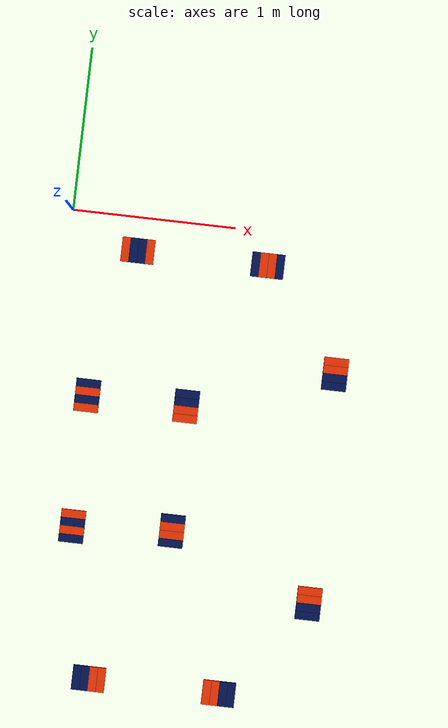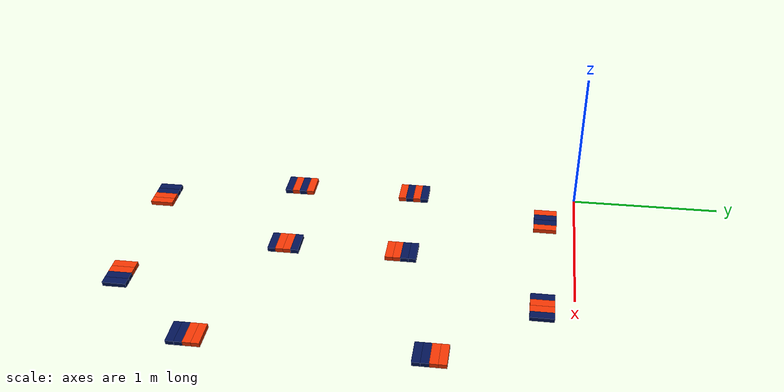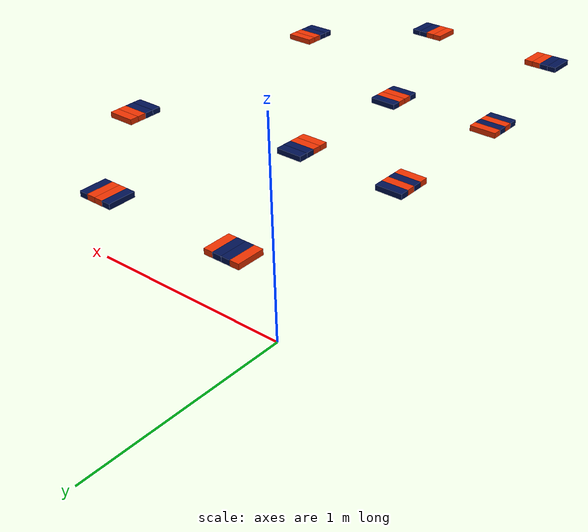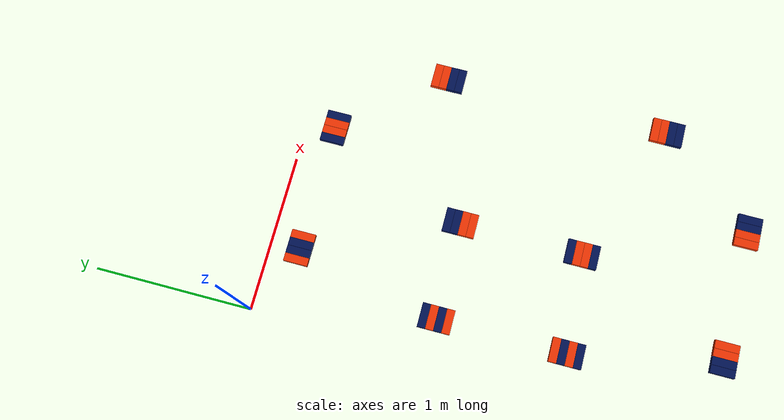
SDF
<?xml version="1.0"?>
<sdf version="1.10">
  <model name="all_cargo">
    <model name='group_1'>

      <model name='cargo_1_1'>
        <pose>1.145 -0.210 0.150 0 0 1.57</pose>
        <link name='grip_link_1_1'>
          <inertial>
            <inertia>
              <ixx>2.98e-4</ixx>
              <ixy>0</ixy>
              <ixz>0</ixz>
              <iyy>4.67e-3</iyy>
              <iyz>0</iyz>
              <izz>4.95e-3</izz>
            </inertia>
            <mass>0.35</mass>
            <pose>0 0 0 0 0 0</pose>
          </inertial>
          <collision name='box_collision_1_1'>
            <geometry>
              <box>
                <size>0.15 0.05 0.03</size>
              </box>
            </geometry>
            <surface>
              <friction>
                <ode/>
              </friction>
              <bounce/>
              <contact/>
            </surface>
          </collision>
          <visual name='box_visual_1_1'>
            <geometry>
              <box>
                <size>0.15 0.05 0.03</size>
              </box>
            </geometry>
            <material>
              <ambient> 0.0 0.068 0.325 1</ambient>
              <diffuse> 0.0 0.068 0.325 1</diffuse>
              <specular>0 0 0 1</specular>
              <emissive>0 0.05 0.0  1</emissive>
            </material>
            <gamma_correction>false</gamma_correction>
          </visual>
          <pose>0 0 0 0 0 0</pose>
          <enable_wind>false</enable_wind>
        </link>
        <static>false</static>
      </model>
      <model name='cargo_1_2'>
        <pose>1.195 -0.210 0.150 0 0 1.57</pose>
        <link name='grip_link_1_2'>
          <inertial>
            <inertia>
              <ixx>2.98e-4</ixx>
              <ixy>0</ixy>
              <ixz>0</ixz>
              <iyy>4.67e-3</iyy>
              <iyz>0</iyz>
              <izz>4.95e-3</izz>
            </inertia>
            <mass>0.35</mass>
            <pose>0 0 0 0 0 0</pose>
          </inertial>
          <collision name='box_collision_1_2'>
            <geometry>
              <box>
                <size>0.15 0.05 0.03</size>
              </box>
            </geometry>
            <surface>
              <friction>
                <ode/>
              </friction>
              <bounce/>
              <contact/>
            </surface>
          </collision>
          <visual name='box_visual_1_2'>
            <geometry>
              <box>
                <size>0.15 0.05 0.03</size>
              </box>
            </geometry>
            <material>
              <ambient> 0.93 0.2 0.007 1</ambient>
              <diffuse> 0.93 0.2 0.007 1</diffuse>
              <specular>0 0 0 1</specular>
              <emissive>0.2 0.05 0.0  1</emissive>
            </material>
            <gamma_correction>false</gamma_correction>
          </visual>
          <pose>0 0 0 0 0 0</pose>
          <enable_wind>false</enable_wind>
        </link>
        <static>false</static>
      </model>
      <model name='cargo_1_3'>
        <pose>1.245 -0.210 0.150 0 0 1.57</pose>
        <link name='grip_link_1_3'>
          <inertial>
            <inertia>
              <ixx>2.98e-4</ixx>
              <ixy>0</ixy>
              <ixz>0</ixz>
              <iyy>4.67e-3</iyy>
              <iyz>0</iyz>
              <izz>4.95e-3</izz>
            </inertia>
            <mass>0.35</mass>
            <pose>0 0 0 0 0 0</pose>
          </inertial>
          <collision name='box_collision_1_3'>
            <geometry>
              <box>
                <size>0.15 0.05 0.03</size>
              </box>
            </geometry>
            <surface>
              <friction>
                <ode/>
              </friction>
              <bounce/>
              <contact/>
            </surface>
          </collision>
          <visual name='box_visual_1_3'>
            <geometry>
              <box>
                <size>0.15 0.05 0.03</size>
              </box>
            </geometry>
            <material>
              <ambient> 0.93 0.2 0.007 1</ambient>
              <diffuse> 0.93 0.2 0.007 1</diffuse>
              <specular>0 0 0 1</specular>
              <emissive>0.2 0.05 0.0  1</emissive>
            </material>
            <gamma_correction>false</gamma_correction>
          </visual>
          <pose>0 0 0 0 0 0</pose>
          <enable_wind>false</enable_wind>
        </link>
        <static>false</static>
      </model>
      <model name='cargo_1_4'>
        <pose>1.295 -0.210 0.150 0 0 1.57</pose>
        <link name='grip_link_1_4'>
          <inertial>
            <inertia>
              <ixx>2.98e-4</ixx>
              <ixy>0</ixy>
              <ixz>0</ixz>
              <iyy>4.67e-3</iyy>
              <iyz>0</iyz>
              <izz>4.95e-3</izz>
            </inertia>
            <mass>0.35</mass>
            <pose>0 0 0 0 0 0</pose>
          </inertial>
          <collision name='box_collision_1_4'>
            <geometry>
              <box>
                <size>0.15 0.05 0.03</size>
              </box>
            </geometry>
            <surface>
              <friction>
                <ode/>
              </friction>
              <bounce/>
              <contact/>
            </surface>
          </collision>
          <visual name='box_visual_1_4'>
            <geometry>
              <box>
                <size>0.15 0.05 0.03</size>
              </box>
            </geometry>
            <material>
              <ambient> 0.0 0.068 0.325 1</ambient>
              <diffuse> 0.0 0.068 0.325 1</diffuse>
              <specular>0 0 0 1</specular>
              <emissive>0 0.05 0.0  1</emissive>
            </material>
            <gamma_correction>false</gamma_correction>
          </visual>
          <pose>0 0 0 0 0 0</pose>
          <enable_wind>false</enable_wind>
        </link>
        <static>false</static>
      </model>
    </model>    <model name='group_2'>

      <model name='cargo_2_1'>
        <pose>0.350 -0.210 0.150 0 0 1.57</pose>
        <link name='grip_link_2_1'>
          <inertial>
            <inertia>
              <ixx>2.98e-4</ixx>
              <ixy>0</ixy>
              <ixz>0</ixz>
              <iyy>4.67e-3</iyy>
              <iyz>0</iyz>
              <izz>4.95e-3</izz>
            </inertia>
            <mass>0.35</mass>
            <pose>0 0 0 0 0 0</pose>
          </inertial>
          <collision name='box_collision_2_1'>
            <geometry>
              <box>
                <size>0.15 0.05 0.03</size>
              </box>
            </geometry>
            <surface>
              <friction>
                <ode/>
              </friction>
              <bounce/>
              <contact/>
            </surface>
          </collision>
          <visual name='box_visual_2_1'>
            <geometry>
              <box>
                <size>0.15 0.05 0.03</size>
              </box>
            </geometry>
            <material>
              <ambient> 0.93 0.2 0.007 1</ambient>
              <diffuse> 0.93 0.2 0.007 1</diffuse>
              <specular>0 0 0 1</specular>
              <emissive>0.2 0.05 0.0  1</emissive>
            </material>
            <gamma_correction>false</gamma_correction>
          </visual>
          <pose>0 0 0 0 0 0</pose>
          <enable_wind>false</enable_wind>
        </link>
        <static>false</static>
      </model>
      <model name='cargo_2_2'>
        <pose>0.400 -0.210 0.150 0 0 1.57</pose>
        <link name='grip_link_2_2'>
          <inertial>
            <inertia>
              <ixx>2.98e-4</ixx>
              <ixy>0</ixy>
              <ixz>0</ixz>
              <iyy>4.67e-3</iyy>
              <iyz>0</iyz>
              <izz>4.95e-3</izz>
            </inertia>
            <mass>0.35</mass>
            <pose>0 0 0 0 0 0</pose>
          </inertial>
          <collision name='box_collision_2_2'>
            <geometry>
              <box>
                <size>0.15 0.05 0.03</size>
              </box>
            </geometry>
            <surface>
              <friction>
                <ode/>
              </friction>
              <bounce/>
              <contact/>
            </surface>
          </collision>
          <visual name='box_visual_2_2'>
            <geometry>
              <box>
                <size>0.15 0.05 0.03</size>
              </box>
            </geometry>
            <material>
              <ambient> 0.0 0.068 0.325 1</ambient>
              <diffuse> 0.0 0.068 0.325 1</diffuse>
              <specular>0 0 0 1</specular>
              <emissive>0 0.05 0.0  1</emissive>
            </material>
            <gamma_correction>false</gamma_correction>
          </visual>
          <pose>0 0 0 0 0 0</pose>
          <enable_wind>false</enable_wind>
        </link>
        <static>false</static>
      </model>
      <model name='cargo_2_3'>
        <pose>0.450 -0.210 0.150 0 0 1.57</pose>
        <link name='grip_link_2_3'>
          <inertial>
            <inertia>
              <ixx>2.98e-4</ixx>
              <ixy>0</ixy>
              <ixz>0</ixz>
              <iyy>4.67e-3</iyy>
              <iyz>0</iyz>
              <izz>4.95e-3</izz>
            </inertia>
            <mass>0.35</mass>
            <pose>0 0 0 0 0 0</pose>
          </inertial>
          <collision name='box_collision_2_3'>
            <geometry>
              <box>
                <size>0.15 0.05 0.03</size>
              </box>
            </geometry>
            <surface>
              <friction>
                <ode/>
              </friction>
              <bounce/>
              <contact/>
            </surface>
          </collision>
          <visual name='box_visual_2_3'>
            <geometry>
              <box>
                <size>0.15 0.05 0.03</size>
              </box>
            </geometry>
            <material>
              <ambient> 0.0 0.068 0.325 1</ambient>
              <diffuse> 0.0 0.068 0.325 1</diffuse>
              <specular>0 0 0 1</specular>
              <emissive>0 0.05 0.0  1</emissive>
            </material>
            <gamma_correction>false</gamma_correction>
          </visual>
          <pose>0 0 0 0 0 0</pose>
          <enable_wind>false</enable_wind>
        </link>
        <static>false</static>
      </model>
      <model name='cargo_2_4'>
        <pose>0.500 -0.210 0.150 0 0 1.57</pose>
        <link name='grip_link_2_4'>
          <inertial>
            <inertia>
              <ixx>2.98e-4</ixx>
              <ixy>0</ixy>
              <ixz>0</ixz>
              <iyy>4.67e-3</iyy>
              <iyz>0</iyz>
              <izz>4.95e-3</izz>
            </inertia>
            <mass>0.35</mass>
            <pose>0 0 0 0 0 0</pose>
          </inertial>
          <collision name='box_collision_2_4'>
            <geometry>
              <box>
                <size>0.15 0.05 0.03</size>
              </box>
            </geometry>
            <surface>
              <friction>
                <ode/>
              </friction>
              <bounce/>
              <contact/>
            </surface>
          </collision>
          <visual name='box_visual_2_4'>
            <geometry>
              <box>
                <size>0.15 0.05 0.03</size>
              </box>
            </geometry>
            <material>
              <ambient> 0.93 0.2 0.007 1</ambient>
              <diffuse> 0.93 0.2 0.007 1</diffuse>
              <specular>0 0 0 1</specular>
              <emissive>0.2 0.05 0.0  1</emissive>
            </material>
            <gamma_correction>false</gamma_correction>
          </visual>
          <pose>0 0 0 0 0 0</pose>
          <enable_wind>false</enable_wind>
        </link>
        <static>false</static>
      </model>
    </model>    <model name='group_3'>

      <model name='cargo_3_1'>
        <pose>0.220 -1.195 0.150 0 0 0</pose>
        <link name='grip_link_3_1'>
          <inertial>
            <inertia>
              <ixx>2.98e-4</ixx>
              <ixy>0</ixy>
              <ixz>0</ixz>
              <iyy>4.67e-3</iyy>
              <iyz>0</iyz>
              <izz>4.95e-3</izz>
            </inertia>
            <mass>0.35</mass>
            <pose>0 0 0 0 0 0</pose>
          </inertial>
          <collision name='box_collision_3_1'>
            <geometry>
              <box>
                <size>0.15 0.05 0.03</size>
              </box>
            </geometry>
            <surface>
              <friction>
                <ode/>
              </friction>
              <bounce/>
              <contact/>
            </surface>
          </collision>
          <visual name='box_visual_3_1'>
            <geometry>
              <box>
                <size>0.15 0.05 0.03</size>
              </box>
            </geometry>
            <material>
              <ambient> 0.93 0.2 0.007 1</ambient>
              <diffuse> 0.93 0.2 0.007 1</diffuse>
              <specular>0 0 0 1</specular>
              <emissive>0.2 0.05 0.0  1</emissive>
            </material>
            <gamma_correction>false</gamma_correction>
          </visual>
          <pose>0 0 0 0 0 0</pose>
          <enable_wind>false</enable_wind>
        </link>
        <static>false</static>
      </model>
      <model name='cargo_3_2'>
        <pose>0.220 -1.145 0.150 0 0 0</pose>
        <link name='grip_link_3_2'>
          <inertial>
            <inertia>
              <ixx>2.98e-4</ixx>
              <ixy>0</ixy>
              <ixz>0</ixz>
              <iyy>4.67e-3</iyy>
              <iyz>0</iyz>
              <izz>4.95e-3</izz>
            </inertia>
            <mass>0.35</mass>
            <pose>0 0 0 0 0 0</pose>
          </inertial>
          <collision name='box_collision_3_2'>
            <geometry>
              <box>
                <size>0.15 0.05 0.03</size>
              </box>
            </geometry>
            <surface>
              <friction>
                <ode/>
              </friction>
              <bounce/>
              <contact/>
            </surface>
          </collision>
          <visual name='box_visual_3_2'>
            <geometry>
              <box>
                <size>0.15 0.05 0.03</size>
              </box>
            </geometry>
            <material>
              <ambient> 0.0 0.068 0.325 1</ambient>
              <diffuse> 0.0 0.068 0.325 1</diffuse>
              <specular>0 0 0 1</specular>
              <emissive>0 0.05 0.0  1</emissive>
            </material>
            <gamma_correction>false</gamma_correction>
          </visual>
          <pose>0 0 0 0 0 0</pose>
          <enable_wind>false</enable_wind>
        </link>
        <static>false</static>
      </model>
      <model name='cargo_3_3'>
        <pose>0.220 -1.095 0.150 0 0 0</pose>
        <link name='grip_link_3_3'>
          <inertial>
            <inertia>
              <ixx>2.98e-4</ixx>
              <ixy>0</ixy>
              <ixz>0</ixz>
              <iyy>4.67e-3</iyy>
              <iyz>0</iyz>
              <izz>4.95e-3</izz>
            </inertia>
            <mass>0.35</mass>
            <pose>0 0 0 0 0 0</pose>
          </inertial>
          <collision name='box_collision_3_3'>
            <geometry>
              <box>
                <size>0.15 0.05 0.03</size>
              </box>
            </geometry>
            <surface>
              <friction>
                <ode/>
              </friction>
              <bounce/>
              <contact/>
            </surface>
          </collision>
          <visual name='box_visual_3_3'>
            <geometry>
              <box>
                <size>0.15 0.05 0.03</size>
              </box>
            </geometry>
            <material>
              <ambient> 0.93 0.2 0.007 1</ambient>
              <diffuse> 0.93 0.2 0.007 1</diffuse>
              <specular>0 0 0 1</specular>
              <emissive>0.2 0.05 0.0  1</emissive>
            </material>
            <gamma_correction>false</gamma_correction>
          </visual>
          <pose>0 0 0 0 0 0</pose>
          <enable_wind>false</enable_wind>
        </link>
        <static>false</static>
      </model>
      <model name='cargo_3_4'>
        <pose>0.220 -1.045 0.150 0 0 0</pose>
        <link name='grip_link_3_4'>
          <inertial>
            <inertia>
              <ixx>2.98e-4</ixx>
              <ixy>0</ixy>
              <ixz>0</ixz>
              <iyy>4.67e-3</iyy>
              <iyz>0</iyz>
              <izz>4.95e-3</izz>
            </inertia>
            <mass>0.35</mass>
            <pose>0 0 0 0 0 0</pose>
          </inertial>
          <collision name='box_collision_3_4'>
            <geometry>
              <box>
                <size>0.15 0.05 0.03</size>
              </box>
            </geometry>
            <surface>
              <friction>
                <ode/>
              </friction>
              <bounce/>
              <contact/>
            </surface>
          </collision>
          <visual name='box_visual_3_4'>
            <geometry>
              <box>
                <size>0.15 0.05 0.03</size>
              </box>
            </geometry>
            <material>
              <ambient> 0.0 0.068 0.325 1</ambient>
              <diffuse> 0.0 0.068 0.325 1</diffuse>
              <specular>0 0 0 1</specular>
              <emissive>0 0.05 0.0  1</emissive>
            </material>
            <gamma_correction>false</gamma_correction>
          </visual>
          <pose>0 0 0 0 0 0</pose>
          <enable_wind>false</enable_wind>
        </link>
        <static>false</static>
      </model>
    </model>    <model name='group_4'>

      <model name='cargo_4_1'>
        <pose>0.825 -1.192 0.150 0 0 0</pose>
        <link name='grip_link_4_1'>
          <inertial>
            <inertia>
              <ixx>2.98e-4</ixx>
              <ixy>0</ixy>
              <ixz>0</ixz>
              <iyy>4.67e-3</iyy>
              <iyz>0</iyz>
              <izz>4.95e-3</izz>
            </inertia>
            <mass>0.35</mass>
            <pose>0 0 0 0 0 0</pose>
          </inertial>
          <collision name='box_collision_4_1'>
            <geometry>
              <box>
                <size>0.15 0.05 0.03</size>
              </box>
            </geometry>
            <surface>
              <friction>
                <ode/>
              </friction>
              <bounce/>
              <contact/>
            </surface>
          </collision>
          <visual name='box_visual_4_1'>
            <geometry>
              <box>
                <size>0.15 0.05 0.03</size>
              </box>
            </geometry>
            <material>
              <ambient> 0.93 0.2 0.007 1</ambient>
              <diffuse> 0.93 0.2 0.007 1</diffuse>
              <specular>0 0 0 1</specular>
              <emissive>0.2 0.05 0.0  1</emissive>
            </material>
            <gamma_correction>false</gamma_correction>
          </visual>
          <pose>0 0 0 0 0 0</pose>
          <enable_wind>false</enable_wind>
        </link>
        <static>false</static>
      </model>
      <model name='cargo_4_2'>
        <pose>0.825 -1.142 0.150 0 0 0</pose>
        <link name='grip_link_4_2'>
          <inertial>
            <inertia>
              <ixx>2.98e-4</ixx>
              <ixy>0</ixy>
              <ixz>0</ixz>
              <iyy>4.67e-3</iyy>
              <iyz>0</iyz>
              <izz>4.95e-3</izz>
            </inertia>
            <mass>0.35</mass>
            <pose>0 0 0 0 0 0</pose>
          </inertial>
          <collision name='box_collision_4_2'>
            <geometry>
              <box>
                <size>0.15 0.05 0.03</size>
              </box>
            </geometry>
            <surface>
              <friction>
                <ode/>
              </friction>
              <bounce/>
              <contact/>
            </surface>
          </collision>
          <visual name='box_visual_4_2'>
            <geometry>
              <box>
                <size>0.15 0.05 0.03</size>
              </box>
            </geometry>
            <material>
              <ambient> 0.93 0.2 0.007 1</ambient>
              <diffuse> 0.93 0.2 0.007 1</diffuse>
              <specular>0 0 0 1</specular>
              <emissive>0.2 0.05 0.0  1</emissive>
            </material>
            <gamma_correction>false</gamma_correction>
          </visual>
          <pose>0 0 0 0 0 0</pose>
          <enable_wind>false</enable_wind>
        </link>
        <static>false</static>
      </model>
      <model name='cargo_4_3'>
        <pose>0.825 -1.092 0.150 0 0 0</pose>
        <link name='grip_link_4_3'>
          <inertial>
            <inertia>
              <ixx>2.98e-4</ixx>
              <ixy>0</ixy>
              <ixz>0</ixz>
              <iyy>4.67e-3</iyy>
              <iyz>0</iyz>
              <izz>4.95e-3</izz>
            </inertia>
            <mass>0.35</mass>
            <pose>0 0 0 0 0 0</pose>
          </inertial>
          <collision name='box_collision_4_3'>
            <geometry>
              <box>
                <size>0.15 0.05 0.03</size>
              </box>
            </geometry>
            <surface>
              <friction>
                <ode/>
              </friction>
              <bounce/>
              <contact/>
            </surface>
          </collision>
          <visual name='box_visual_4_3'>
            <geometry>
              <box>
                <size>0.15 0.05 0.03</size>
              </box>
            </geometry>
            <material>
              <ambient> 0.0 0.068 0.325 1</ambient>
              <diffuse> 0.0 0.068 0.325 1</diffuse>
              <specular>0 0 0 1</specular>
              <emissive>0 0.05 0.0  1</emissive>
            </material>
            <gamma_correction>false</gamma_correction>
          </visual>
          <pose>0 0 0 0 0 0</pose>
          <enable_wind>false</enable_wind>
        </link>
        <static>false</static>
      </model>
      <model name='cargo_4_4'>
        <pose>0.825 -1.042 0.150 0 0 0</pose>
        <link name='grip_link_4_4'>
          <inertial>
            <inertia>
              <ixx>2.98e-4</ixx>
              <ixy>0</ixy>
              <ixz>0</ixz>
              <iyy>4.67e-3</iyy>
              <iyz>0</iyz>
              <izz>4.95e-3</izz>
            </inertia>
            <mass>0.35</mass>
            <pose>0 0 0 0 0 0</pose>
          </inertial>
          <collision name='box_collision_4_4'>
            <geometry>
              <box>
                <size>0.15 0.05 0.03</size>
              </box>
            </geometry>
            <surface>
              <friction>
                <ode/>
              </friction>
              <bounce/>
              <contact/>
            </surface>
          </collision>
          <visual name='box_visual_4_4'>
            <geometry>
              <box>
                <size>0.15 0.05 0.03</size>
              </box>
            </geometry>
            <material>
              <ambient> 0.0 0.068 0.325 1</ambient>
              <diffuse> 0.0 0.068 0.325 1</diffuse>
              <specular>0 0 0 1</specular>
              <emissive>0 0.05 0.0  1</emissive>
            </material>
            <gamma_correction>false</gamma_correction>
          </visual>
          <pose>0 0 0 0 0 0</pose>
          <enable_wind>false</enable_wind>
        </link>
        <static>false</static>
      </model>
    </model>    <model name='group_5'>

      <model name='cargo_5_1'>
        <pose>1.700 -0.895 0.200 0 0 0</pose>
        <link name='grip_link_5_1'>
          <inertial>
            <inertia>
              <ixx>2.98e-4</ixx>
              <ixy>0</ixy>
              <ixz>0</ixz>
              <iyy>4.67e-3</iyy>
              <iyz>0</iyz>
              <izz>4.95e-3</izz>
            </inertia>
            <mass>0.35</mass>
            <pose>0 0 0 0 0 0</pose>
          </inertial>
          <collision name='box_collision_5_1'>
            <geometry>
              <box>
                <size>0.15 0.05 0.03</size>
              </box>
            </geometry>
            <surface>
              <friction>
                <ode/>
              </friction>
              <bounce/>
              <contact/>
            </surface>
          </collision>
          <visual name='box_visual_5_1'>
            <geometry>
              <box>
                <size>0.15 0.05 0.03</size>
              </box>
            </geometry>
            <material>
              <ambient> 0.0 0.068 0.325 1</ambient>
              <diffuse> 0.0 0.068 0.325 1</diffuse>
              <specular>0 0 0 1</specular>
              <emissive>0 0.05 0.0  1</emissive>
            </material>
            <gamma_correction>false</gamma_correction>
          </visual>
          <pose>0 0 0 0 0 0</pose>
          <enable_wind>false</enable_wind>
        </link>
        <static>false</static>
      </model>
      <model name='cargo_5_2'>
        <pose>1.700 -0.845 0.200 0 0 0</pose>
        <link name='grip_link_5_2'>
          <inertial>
            <inertia>
              <ixx>2.98e-4</ixx>
              <ixy>0</ixy>
              <ixz>0</ixz>
              <iyy>4.67e-3</iyy>
              <iyz>0</iyz>
              <izz>4.95e-3</izz>
            </inertia>
            <mass>0.35</mass>
            <pose>0 0 0 0 0 0</pose>
          </inertial>
          <collision name='box_collision_5_2'>
            <geometry>
              <box>
                <size>0.15 0.05 0.03</size>
              </box>
            </geometry>
            <surface>
              <friction>
                <ode/>
              </friction>
              <bounce/>
              <contact/>
            </surface>
          </collision>
          <visual name='box_visual_5_2'>
            <geometry>
              <box>
                <size>0.15 0.05 0.03</size>
              </box>
            </geometry>
            <material>
              <ambient> 0.0 0.068 0.325 1</ambient>
              <diffuse> 0.0 0.068 0.325 1</diffuse>
              <specular>0 0 0 1</specular>
              <emissive>0 0.05 0.0  1</emissive>
            </material>
            <gamma_correction>false</gamma_correction>
          </visual>
          <pose>0 0 0 0 0 0</pose>
          <enable_wind>false</enable_wind>
        </link>
        <static>false</static>
      </model>
      <model name='cargo_5_3'>
        <pose>1.700 -0.795 0.200 0 0 0</pose>
        <link name='grip_link_5_3'>
          <inertial>
            <inertia>
              <ixx>2.98e-4</ixx>
              <ixy>0</ixy>
              <ixz>0</ixz>
              <iyy>4.67e-3</iyy>
              <iyz>0</iyz>
              <izz>4.95e-3</izz>
            </inertia>
            <mass>0.35</mass>
            <pose>0 0 0 0 0 0</pose>
          </inertial>
          <collision name='box_collision_5_3'>
            <geometry>
              <box>
                <size>0.15 0.05 0.03</size>
              </box>
            </geometry>
            <surface>
              <friction>
                <ode/>
              </friction>
              <bounce/>
              <contact/>
            </surface>
          </collision>
          <visual name='box_visual_5_3'>
            <geometry>
              <box>
                <size>0.15 0.05 0.03</size>
              </box>
            </geometry>
            <material>
              <ambient> 0.93 0.2 0.007 1</ambient>
              <diffuse> 0.93 0.2 0.007 1</diffuse>
              <specular>0 0 0 1</specular>
              <emissive>0.2 0.05 0.0  1</emissive>
            </material>
            <gamma_correction>false</gamma_correction>
          </visual>
          <pose>0 0 0 0 0 0</pose>
          <enable_wind>false</enable_wind>
        </link>
        <static>false</static>
      </model>
      <model name='cargo_5_4'>
        <pose>1.700 -0.745 0.200 0 0 0</pose>
        <link name='grip_link_5_4'>
          <inertial>
            <inertia>
              <ixx>2.98e-4</ixx>
              <ixy>0</ixy>
              <ixz>0</ixz>
              <iyy>4.67e-3</iyy>
              <iyz>0</iyz>
              <izz>4.95e-3</izz>
            </inertia>
            <mass>0.35</mass>
            <pose>0 0 0 0 0 0</pose>
          </inertial>
          <collision name='box_collision_5_4'>
            <geometry>
              <box>
                <size>0.15 0.05 0.03</size>
              </box>
            </geometry>
            <surface>
              <friction>
                <ode/>
              </friction>
              <bounce/>
              <contact/>
            </surface>
          </collision>
          <visual name='box_visual_5_4'>
            <geometry>
              <box>
                <size>0.15 0.05 0.03</size>
              </box>
            </geometry>
            <material>
              <ambient> 0.93 0.2 0.007 1</ambient>
              <diffuse> 0.93 0.2 0.007 1</diffuse>
              <specular>0 0 0 1</specular>
              <emissive>0.2 0.05 0.0  1</emissive>
            </material>
            <gamma_correction>false</gamma_correction>
          </visual>
          <pose>0 0 0 0 0 0</pose>
          <enable_wind>false</enable_wind>
        </link>
        <static>false</static>
      </model>
    </model>    <model name='group_6'>

      <model name='cargo_6_1'>
        <pose>1.145 -2.830 0.150 0 0 1.57</pose>
        <link name='grip_link_6_1'>
          <inertial>
            <inertia>
              <ixx>2.98e-4</ixx>
              <ixy>0</ixy>
              <ixz>0</ixz>
              <iyy>4.67e-3</iyy>
              <iyz>0</iyz>
              <izz>4.95e-3</izz>
            </inertia>
            <mass>0.35</mass>
            <pose>0 0 0 0 0 0</pose>
          </inertial>
          <collision name='box_collision_6_1'>
            <geometry>
              <box>
                <size>0.15 0.05 0.03</size>
              </box>
            </geometry>
            <surface>
              <friction>
                <ode/>
              </friction>
              <bounce/>
              <contact/>
            </surface>
          </collision>
          <visual name='box_visual_6_1'>
            <geometry>
              <box>
                <size>0.15 0.05 0.03</size>
              </box>
            </geometry>
            <material>
              <ambient> 0.93 0.2 0.007 1</ambient>
              <diffuse> 0.93 0.2 0.007 1</diffuse>
              <specular>0 0 0 1</specular>
              <emissive>0.2 0.05 0.0  1</emissive>
            </material>
            <gamma_correction>false</gamma_correction>
          </visual>
          <pose>0 0 0 0 0 0</pose>
          <enable_wind>false</enable_wind>
        </link>
        <static>false</static>
      </model>
      <model name='cargo_6_2'>
        <pose>1.195 -2.830 0.150 0 0 1.57</pose>
        <link name='grip_link_6_2'>
          <inertial>
            <inertia>
              <ixx>2.98e-4</ixx>
              <ixy>0</ixy>
              <ixz>0</ixz>
              <iyy>4.67e-3</iyy>
              <iyz>0</iyz>
              <izz>4.95e-3</izz>
            </inertia>
            <mass>0.35</mass>
            <pose>0 0 0 0 0 0</pose>
          </inertial>
          <collision name='box_collision_6_2'>
            <geometry>
              <box>
                <size>0.15 0.05 0.03</size>
              </box>
            </geometry>
            <surface>
              <friction>
                <ode/>
              </friction>
              <bounce/>
              <contact/>
            </surface>
          </collision>
          <visual name='box_visual_6_2'>
            <geometry>
              <box>
                <size>0.15 0.05 0.03</size>
              </box>
            </geometry>
            <material>
              <ambient> 0.93 0.2 0.007 1</ambient>
              <diffuse> 0.93 0.2 0.007 1</diffuse>
              <specular>0 0 0 1</specular>
              <emissive>0.2 0.05 0.0  1</emissive>
            </material>
            <gamma_correction>false</gamma_correction>
          </visual>
          <pose>0 0 0 0 0 0</pose>
          <enable_wind>false</enable_wind>
        </link>
        <static>false</static>
      </model>
      <model name='cargo_6_3'>
        <pose>1.245 -2.830 0.150 0 0 1.57</pose>
        <link name='grip_link_6_3'>
          <inertial>
            <inertia>
              <ixx>2.98e-4</ixx>
              <ixy>0</ixy>
              <ixz>0</ixz>
              <iyy>4.67e-3</iyy>
              <iyz>0</iyz>
              <izz>4.95e-3</izz>
            </inertia>
            <mass>0.35</mass>
            <pose>0 0 0 0 0 0</pose>
          </inertial>
          <collision name='box_collision_6_3'>
            <geometry>
              <box>
                <size>0.15 0.05 0.03</size>
              </box>
            </geometry>
            <surface>
              <friction>
                <ode/>
              </friction>
              <bounce/>
              <contact/>
            </surface>
          </collision>
          <visual name='box_visual_6_3'>
            <geometry>
              <box>
                <size>0.15 0.05 0.03</size>
              </box>
            </geometry>
            <material>
              <ambient> 0.0 0.068 0.325 1</ambient>
              <diffuse> 0.0 0.068 0.325 1</diffuse>
              <specular>0 0 0 1</specular>
              <emissive>0 0.05 0.0  1</emissive>
            </material>
            <gamma_correction>false</gamma_correction>
          </visual>
          <pose>0 0 0 0 0 0</pose>
          <enable_wind>false</enable_wind>
        </link>
        <static>false</static>
      </model>
      <model name='cargo_6_4'>
        <pose>1.295 -2.830 0.150 0 0 1.57</pose>
        <link name='grip_link_6_4'>
          <inertial>
            <inertia>
              <ixx>2.98e-4</ixx>
              <ixy>0</ixy>
              <ixz>0</ixz>
              <iyy>4.67e-3</iyy>
              <iyz>0</iyz>
              <izz>4.95e-3</izz>
            </inertia>
            <mass>0.35</mass>
            <pose>0 0 0 0 0 0</pose>
          </inertial>
          <collision name='box_collision_6_4'>
            <geometry>
              <box>
                <size>0.15 0.05 0.03</size>
              </box>
            </geometry>
            <surface>
              <friction>
                <ode/>
              </friction>
              <bounce/>
              <contact/>
            </surface>
          </collision>
          <visual name='box_visual_6_4'>
            <geometry>
              <box>
                <size>0.15 0.05 0.03</size>
              </box>
            </geometry>
            <material>
              <ambient> 0.0 0.068 0.325 1</ambient>
              <diffuse> 0.0 0.068 0.325 1</diffuse>
              <specular>0 0 0 1</specular>
              <emissive>0 0.05 0.0  1</emissive>
            </material>
            <gamma_correction>false</gamma_correction>
          </visual>
          <pose>0 0 0 0 0 0</pose>
          <enable_wind>false</enable_wind>
        </link>
        <static>false</static>
      </model>
    </model>    <model name='group_7'>

      <model name='cargo_7_1'>
        <pose>0.350 -2.830 0.150 0 0 1.57</pose>
        <link name='grip_link_7_1'>
          <inertial>
            <inertia>
              <ixx>2.98e-4</ixx>
              <ixy>0</ixy>
              <ixz>0</ixz>
              <iyy>4.67e-3</iyy>
              <iyz>0</iyz>
              <izz>4.95e-3</izz>
            </inertia>
            <mass>0.35</mass>
            <pose>0 0 0 0 0 0</pose>
          </inertial>
          <collision name='box_collision_7_1'>
            <geometry>
              <box>
                <size>0.15 0.05 0.03</size>
              </box>
            </geometry>
            <surface>
              <friction>
                <ode/>
              </friction>
              <bounce/>
              <contact/>
            </surface>
          </collision>
          <visual name='box_visual_7_1'>
            <geometry>
              <box>
                <size>0.15 0.05 0.03</size>
              </box>
            </geometry>
            <material>
              <ambient> 0.0 0.068 0.325 1</ambient>
              <diffuse> 0.0 0.068 0.325 1</diffuse>
              <specular>0 0 0 1</specular>
              <emissive>0 0.05 0.0  1</emissive>
            </material>
            <gamma_correction>false</gamma_correction>
          </visual>
          <pose>0 0 0 0 0 0</pose>
          <enable_wind>false</enable_wind>
        </link>
        <static>false</static>
      </model>
      <model name='cargo_7_2'>
        <pose>0.400 -2.830 0.150 0 0 1.57</pose>
        <link name='grip_link_7_2'>
          <inertial>
            <inertia>
              <ixx>2.98e-4</ixx>
              <ixy>0</ixy>
              <ixz>0</ixz>
              <iyy>4.67e-3</iyy>
              <iyz>0</iyz>
              <izz>4.95e-3</izz>
            </inertia>
            <mass>0.35</mass>
            <pose>0 0 0 0 0 0</pose>
          </inertial>
          <collision name='box_collision_7_2'>
            <geometry>
              <box>
                <size>0.15 0.05 0.03</size>
              </box>
            </geometry>
            <surface>
              <friction>
                <ode/>
              </friction>
              <bounce/>
              <contact/>
            </surface>
          </collision>
          <visual name='box_visual_7_2'>
            <geometry>
              <box>
                <size>0.15 0.05 0.03</size>
              </box>
            </geometry>
            <material>
              <ambient> 0.0 0.068 0.325 1</ambient>
              <diffuse> 0.0 0.068 0.325 1</diffuse>
              <specular>0 0 0 1</specular>
              <emissive>0 0.05 0.0  1</emissive>
            </material>
            <gamma_correction>false</gamma_correction>
          </visual>
          <pose>0 0 0 0 0 0</pose>
          <enable_wind>false</enable_wind>
        </link>
        <static>false</static>
      </model>
      <model name='cargo_7_3'>
        <pose>0.450 -2.830 0.150 0 0 1.57</pose>
        <link name='grip_link_7_3'>
          <inertial>
            <inertia>
              <ixx>2.98e-4</ixx>
              <ixy>0</ixy>
              <ixz>0</ixz>
              <iyy>4.67e-3</iyy>
              <iyz>0</iyz>
              <izz>4.95e-3</izz>
            </inertia>
            <mass>0.35</mass>
            <pose>0 0 0 0 0 0</pose>
          </inertial>
          <collision name='box_collision_7_3'>
            <geometry>
              <box>
                <size>0.15 0.05 0.03</size>
              </box>
            </geometry>
            <surface>
              <friction>
                <ode/>
              </friction>
              <bounce/>
              <contact/>
            </surface>
          </collision>
          <visual name='box_visual_7_3'>
            <geometry>
              <box>
                <size>0.15 0.05 0.03</size>
              </box>
            </geometry>
            <material>
              <ambient> 0.93 0.2 0.007 1</ambient>
              <diffuse> 0.93 0.2 0.007 1</diffuse>
              <specular>0 0 0 1</specular>
              <emissive>0.2 0.05 0.0  1</emissive>
            </material>
            <gamma_correction>false</gamma_correction>
          </visual>
          <pose>0 0 0 0 0 0</pose>
          <enable_wind>false</enable_wind>
        </link>
        <static>false</static>
      </model>
      <model name='cargo_7_4'>
        <pose>0.500 -2.830 0.150 0 0 1.57</pose>
        <link name='grip_link_7_4'>
          <inertial>
            <inertia>
              <ixx>2.98e-4</ixx>
              <ixy>0</ixy>
              <ixz>0</ixz>
              <iyy>4.67e-3</iyy>
              <iyz>0</iyz>
              <izz>4.95e-3</izz>
            </inertia>
            <mass>0.35</mass>
            <pose>0 0 0 0 0 0</pose>
          </inertial>
          <collision name='box_collision_7_4'>
            <geometry>
              <box>
                <size>0.15 0.05 0.03</size>
              </box>
            </geometry>
            <surface>
              <friction>
                <ode/>
              </friction>
              <bounce/>
              <contact/>
            </surface>
          </collision>
          <visual name='box_visual_7_4'>
            <geometry>
              <box>
                <size>0.15 0.05 0.03</size>
              </box>
            </geometry>
            <material>
              <ambient> 0.93 0.2 0.007 1</ambient>
              <diffuse> 0.93 0.2 0.007 1</diffuse>
              <specular>0 0 0 1</specular>
              <emissive>0.2 0.05 0.0  1</emissive>
            </material>
            <gamma_correction>false</gamma_correction>
          </visual>
          <pose>0 0 0 0 0 0</pose>
          <enable_wind>false</enable_wind>
        </link>
        <static>false</static>
      </model>
    </model>    <model name='group_8'>

      <model name='cargo_8_1'>
        <pose>0.220 -1.995 0.150 0 0 0</pose>
        <link name='grip_link_8_1'>
          <inertial>
            <inertia>
              <ixx>2.98e-4</ixx>
              <ixy>0</ixy>
              <ixz>0</ixz>
              <iyy>4.67e-3</iyy>
              <iyz>0</iyz>
              <izz>4.95e-3</izz>
            </inertia>
            <mass>0.35</mass>
            <pose>0 0 0 0 0 0</pose>
          </inertial>
          <collision name='box_collision_8_1'>
            <geometry>
              <box>
                <size>0.15 0.05 0.03</size>
              </box>
            </geometry>
            <surface>
              <friction>
                <ode/>
              </friction>
              <bounce/>
              <contact/>
            </surface>
          </collision>
          <visual name='box_visual_8_1'>
            <geometry>
              <box>
                <size>0.15 0.05 0.03</size>
              </box>
            </geometry>
            <material>
              <ambient> 0.0 0.068 0.325 1</ambient>
              <diffuse> 0.0 0.068 0.325 1</diffuse>
              <specular>0 0 0 1</specular>
              <emissive>0 0.05 0.0  1</emissive>
            </material>
            <gamma_correction>false</gamma_correction>
          </visual>
          <pose>0 0 0 0 0 0</pose>
          <enable_wind>false</enable_wind>
        </link>
        <static>false</static>
      </model>
      <model name='cargo_8_2'>
        <pose>0.220 -1.945 0.150 0 0 0</pose>
        <link name='grip_link_8_2'>
          <inertial>
            <inertia>
              <ixx>2.98e-4</ixx>
              <ixy>0</ixy>
              <ixz>0</ixz>
              <iyy>4.67e-3</iyy>
              <iyz>0</iyz>
              <izz>4.95e-3</izz>
            </inertia>
            <mass>0.35</mass>
            <pose>0 0 0 0 0 0</pose>
          </inertial>
          <collision name='box_collision_8_2'>
            <geometry>
              <box>
                <size>0.15 0.05 0.03</size>
              </box>
            </geometry>
            <surface>
              <friction>
                <ode/>
              </friction>
              <bounce/>
              <contact/>
            </surface>
          </collision>
          <visual name='box_visual_8_2'>
            <geometry>
              <box>
                <size>0.15 0.05 0.03</size>
              </box>
            </geometry>
            <material>
              <ambient> 0.93 0.2 0.007 1</ambient>
              <diffuse> 0.93 0.2 0.007 1</diffuse>
              <specular>0 0 0 1</specular>
              <emissive>0.2 0.05 0.0  1</emissive>
            </material>
            <gamma_correction>false</gamma_correction>
          </visual>
          <pose>0 0 0 0 0 0</pose>
          <enable_wind>false</enable_wind>
        </link>
        <static>false</static>
      </model>
      <model name='cargo_8_3'>
        <pose>0.220 -1.895 0.150 0 0 0</pose>
        <link name='grip_link_8_3'>
          <inertial>
            <inertia>
              <ixx>2.98e-4</ixx>
              <ixy>0</ixy>
              <ixz>0</ixz>
              <iyy>4.67e-3</iyy>
              <iyz>0</iyz>
              <izz>4.95e-3</izz>
            </inertia>
            <mass>0.35</mass>
            <pose>0 0 0 0 0 0</pose>
          </inertial>
          <collision name='box_collision_8_3'>
            <geometry>
              <box>
                <size>0.15 0.05 0.03</size>
              </box>
            </geometry>
            <surface>
              <friction>
                <ode/>
              </friction>
              <bounce/>
              <contact/>
            </surface>
          </collision>
          <visual name='box_visual_8_3'>
            <geometry>
              <box>
                <size>0.15 0.05 0.03</size>
              </box>
            </geometry>
            <material>
              <ambient> 0.0 0.068 0.325 1</ambient>
              <diffuse> 0.0 0.068 0.325 1</diffuse>
              <specular>0 0 0 1</specular>
              <emissive>0 0.05 0.0  1</emissive>
            </material>
            <gamma_correction>false</gamma_correction>
          </visual>
          <pose>0 0 0 0 0 0</pose>
          <enable_wind>false</enable_wind>
        </link>
        <static>false</static>
      </model>
      <model name='cargo_8_4'>
        <pose>0.220 -1.845 0.150 0 0 0</pose>
        <link name='grip_link_8_4'>
          <inertial>
            <inertia>
              <ixx>2.98e-4</ixx>
              <ixy>0</ixy>
              <ixz>0</ixz>
              <iyy>4.67e-3</iyy>
              <iyz>0</iyz>
              <izz>4.95e-3</izz>
            </inertia>
            <mass>0.35</mass>
            <pose>0 0 0 0 0 0</pose>
          </inertial>
          <collision name='box_collision_8_4'>
            <geometry>
              <box>
                <size>0.15 0.05 0.03</size>
              </box>
            </geometry>
            <surface>
              <friction>
                <ode/>
              </friction>
              <bounce/>
              <contact/>
            </surface>
          </collision>
          <visual name='box_visual_8_4'>
            <geometry>
              <box>
                <size>0.15 0.05 0.03</size>
              </box>
            </geometry>
            <material>
              <ambient> 0.93 0.2 0.007 1</ambient>
              <diffuse> 0.93 0.2 0.007 1</diffuse>
              <specular>0 0 0 1</specular>
              <emissive>0.2 0.05 0.0  1</emissive>
            </material>
            <gamma_correction>false</gamma_correction>
          </visual>
          <pose>0 0 0 0 0 0</pose>
          <enable_wind>false</enable_wind>
        </link>
        <static>false</static>
      </model>
    </model>    <model name='group_9'>

      <model name='cargo_9_1'>
        <pose>0.825 -1.955 0.150 0 0 0</pose>
        <link name='grip_link_9_1'>
          <inertial>
            <inertia>
              <ixx>2.98e-4</ixx>
              <ixy>0</ixy>
              <ixz>0</ixz>
              <iyy>4.67e-3</iyy>
              <iyz>0</iyz>
              <izz>4.95e-3</izz>
            </inertia>
            <mass>0.35</mass>
            <pose>0 0 0 0 0 0</pose>
          </inertial>
          <collision name='box_collision_9_1'>
            <geometry>
              <box>
                <size>0.15 0.05 0.03</size>
              </box>
            </geometry>
            <surface>
              <friction>
                <ode/>
              </friction>
              <bounce/>
              <contact/>
            </surface>
          </collision>
          <visual name='box_visual_9_1'>
            <geometry>
              <box>
                <size>0.15 0.05 0.03</size>
              </box>
            </geometry>
            <material>
              <ambient> 0.0 0.068 0.325 1</ambient>
              <diffuse> 0.0 0.068 0.325 1</diffuse>
              <specular>0 0 0 1</specular>
              <emissive>0 0.05 0.0  1</emissive>
            </material>
            <gamma_correction>false</gamma_correction>
          </visual>
          <pose>0 0 0 0 0 0</pose>
          <enable_wind>false</enable_wind>
        </link>
        <static>false</static>
      </model>
      <model name='cargo_9_2'>
        <pose>0.825 -1.905 0.150 0 0 0</pose>
        <link name='grip_link_9_2'>
          <inertial>
            <inertia>
              <ixx>2.98e-4</ixx>
              <ixy>0</ixy>
              <ixz>0</ixz>
              <iyy>4.67e-3</iyy>
              <iyz>0</iyz>
              <izz>4.95e-3</izz>
            </inertia>
            <mass>0.35</mass>
            <pose>0 0 0 0 0 0</pose>
          </inertial>
          <collision name='box_collision_9_2'>
            <geometry>
              <box>
                <size>0.15 0.05 0.03</size>
              </box>
            </geometry>
            <surface>
              <friction>
                <ode/>
              </friction>
              <bounce/>
              <contact/>
            </surface>
          </collision>
          <visual name='box_visual_9_2'>
            <geometry>
              <box>
                <size>0.15 0.05 0.03</size>
              </box>
            </geometry>
            <material>
              <ambient> 0.93 0.2 0.007 1</ambient>
              <diffuse> 0.93 0.2 0.007 1</diffuse>
              <specular>0 0 0 1</specular>
              <emissive>0.2 0.05 0.0  1</emissive>
            </material>
            <gamma_correction>false</gamma_correction>
          </visual>
          <pose>0 0 0 0 0 0</pose>
          <enable_wind>false</enable_wind>
        </link>
        <static>false</static>
      </model>
      <model name='cargo_9_3'>
        <pose>0.825 -1.855 0.150 0 0 0</pose>
        <link name='grip_link_9_3'>
          <inertial>
            <inertia>
              <ixx>2.98e-4</ixx>
              <ixy>0</ixy>
              <ixz>0</ixz>
              <iyy>4.67e-3</iyy>
              <iyz>0</iyz>
              <izz>4.95e-3</izz>
            </inertia>
            <mass>0.35</mass>
            <pose>0 0 0 0 0 0</pose>
          </inertial>
          <collision name='box_collision_9_3'>
            <geometry>
              <box>
                <size>0.15 0.05 0.03</size>
              </box>
            </geometry>
            <surface>
              <friction>
                <ode/>
              </friction>
              <bounce/>
              <contact/>
            </surface>
          </collision>
          <visual name='box_visual_9_3'>
            <geometry>
              <box>
                <size>0.15 0.05 0.03</size>
              </box>
            </geometry>
            <material>
              <ambient> 0.93 0.2 0.007 1</ambient>
              <diffuse> 0.93 0.2 0.007 1</diffuse>
              <specular>0 0 0 1</specular>
              <emissive>0.2 0.05 0.0  1</emissive>
            </material>
            <gamma_correction>false</gamma_correction>
          </visual>
          <pose>0 0 0 0 0 0</pose>
          <enable_wind>false</enable_wind>
        </link>
        <static>false</static>
      </model>
      <model name='cargo_9_4'>
        <pose>0.825 -1.805 0.150 0 0 0</pose>
        <link name='grip_link_9_4'>
          <inertial>
            <inertia>
              <ixx>2.98e-4</ixx>
              <ixy>0</ixy>
              <ixz>0</ixz>
              <iyy>4.67e-3</iyy>
              <iyz>0</iyz>
              <izz>4.95e-3</izz>
            </inertia>
            <mass>0.35</mass>
            <pose>0 0 0 0 0 0</pose>
          </inertial>
          <collision name='box_collision_9_4'>
            <geometry>
              <box>
                <size>0.15 0.05 0.03</size>
              </box>
            </geometry>
            <surface>
              <friction>
                <ode/>
              </friction>
              <bounce/>
              <contact/>
            </surface>
          </collision>
          <visual name='box_visual_9_4'>
            <geometry>
              <box>
                <size>0.15 0.05 0.03</size>
              </box>
            </geometry>
            <material>
              <ambient> 0.0 0.068 0.325 1</ambient>
              <diffuse> 0.0 0.068 0.325 1</diffuse>
              <specular>0 0 0 1</specular>
              <emissive>0 0.05 0.0  1</emissive>
            </material>
            <gamma_correction>false</gamma_correction>
          </visual>
          <pose>0 0 0 0 0 0</pose>
          <enable_wind>false</enable_wind>
        </link>
        <static>false</static>
      </model>
    </model>    <model name='group_10'>

      <model name='cargo_10_1'>
        <pose>1.700 -2.295 0.200 0 0 0</pose>
        <link name='grip_link_10_1'>
          <inertial>
            <inertia>
              <ixx>2.98e-4</ixx>
              <ixy>0</ixy>
              <ixz>0</ixz>
              <iyy>4.67e-3</iyy>
              <iyz>0</iyz>
              <izz>4.95e-3</izz>
            </inertia>
            <mass>0.35</mass>
            <pose>0 0 0 0 0 0</pose>
          </inertial>
          <collision name='box_collision_10_1'>
            <geometry>
              <box>
                <size>0.15 0.05 0.03</size>
              </box>
            </geometry>
            <surface>
              <friction>
                <ode/>
              </friction>
              <bounce/>
              <contact/>
            </surface>
          </collision>
          <visual name='box_visual_10_1'>
            <geometry>
              <box>
                <size>0.15 0.05 0.03</size>
              </box>
            </geometry>
            <material>
              <ambient> 0.0 0.068 0.325 1</ambient>
              <diffuse> 0.0 0.068 0.325 1</diffuse>
              <specular>0 0 0 1</specular>
              <emissive>0 0.05 0.0  1</emissive>
            </material>
            <gamma_correction>false</gamma_correction>
          </visual>
          <pose>0 0 0 0 0 0</pose>
          <enable_wind>false</enable_wind>
        </link>
        <static>false</static>
      </model>
      <model name='cargo_10_2'>
        <pose>1.700 -2.245 0.200 0 0 0</pose>
        <link name='grip_link_10_2'>
          <inertial>
            <inertia>
              <ixx>2.98e-4</ixx>
              <ixy>0</ixy>
              <ixz>0</ixz>
              <iyy>4.67e-3</iyy>
              <iyz>0</iyz>
              <izz>4.95e-3</izz>
            </inertia>
            <mass>0.35</mass>
            <pose>0 0 0 0 0 0</pose>
          </inertial>
          <collision name='box_collision_10_2'>
            <geometry>
              <box>
                <size>0.15 0.05 0.03</size>
              </box>
            </geometry>
            <surface>
              <friction>
                <ode/>
              </friction>
              <bounce/>
              <contact/>
            </surface>
          </collision>
          <visual name='box_visual_10_2'>
            <geometry>
              <box>
                <size>0.15 0.05 0.03</size>
              </box>
            </geometry>
            <material>
              <ambient> 0.0 0.068 0.325 1</ambient>
              <diffuse> 0.0 0.068 0.325 1</diffuse>
              <specular>0 0 0 1</specular>
              <emissive>0 0.05 0.0  1</emissive>
            </material>
            <gamma_correction>false</gamma_correction>
          </visual>
          <pose>0 0 0 0 0 0</pose>
          <enable_wind>false</enable_wind>
        </link>
        <static>false</static>
      </model>
      <model name='cargo_10_3'>
        <pose>1.700 -2.195 0.200 0 0 0</pose>
        <link name='grip_link_10_3'>
          <inertial>
            <inertia>
              <ixx>2.98e-4</ixx>
              <ixy>0</ixy>
              <ixz>0</ixz>
              <iyy>4.67e-3</iyy>
              <iyz>0</iyz>
              <izz>4.95e-3</izz>
            </inertia>
            <mass>0.35</mass>
            <pose>0 0 0 0 0 0</pose>
          </inertial>
          <collision name='box_collision_10_3'>
            <geometry>
              <box>
                <size>0.15 0.05 0.03</size>
              </box>
            </geometry>
            <surface>
              <friction>
                <ode/>
              </friction>
              <bounce/>
              <contact/>
            </surface>
          </collision>
          <visual name='box_visual_10_3'>
            <geometry>
              <box>
                <size>0.15 0.05 0.03</size>
              </box>
            </geometry>
            <material>
              <ambient> 0.93 0.2 0.007 1</ambient>
              <diffuse> 0.93 0.2 0.007 1</diffuse>
              <specular>0 0 0 1</specular>
              <emissive>0.2 0.05 0.0  1</emissive>
            </material>
            <gamma_correction>false</gamma_correction>
          </visual>
          <pose>0 0 0 0 0 0</pose>
          <enable_wind>false</enable_wind>
        </link>
        <static>false</static>
      </model>
      <model name='cargo_10_4'>
        <pose>1.700 -2.145 0.200 0 0 0</pose>
        <link name='grip_link_10_4'>
          <inertial>
            <inertia>
              <ixx>2.98e-4</ixx>
              <ixy>0</ixy>
              <ixz>0</ixz>
              <iyy>4.67e-3</iyy>
              <iyz>0</iyz>
              <izz>4.95e-3</izz>
            </inertia>
            <mass>0.35</mass>
            <pose>0 0 0 0 0 0</pose>
          </inertial>
          <collision name='box_collision_10_4'>
            <geometry>
              <box>
                <size>0.15 0.05 0.03</size>
              </box>
            </geometry>
            <surface>
              <friction>
                <ode/>
              </friction>
              <bounce/>
              <contact/>
            </surface>
          </collision>
          <visual name='box_visual_10_4'>
            <geometry>
              <box>
                <size>0.15 0.05 0.03</size>
              </box>
            </geometry>
            <material>
              <ambient> 0.93 0.2 0.007 1</ambient>
              <diffuse> 0.93 0.2 0.007 1</diffuse>
              <specular>0 0 0 1</specular>
              <emissive>0.2 0.05 0.0  1</emissive>
            </material>
            <gamma_correction>false</gamma_correction>
          </visual>
          <pose>0 0 0 0 0 0</pose>
          <enable_wind>false</enable_wind>
        </link>
        <static>false</static>
      </model>
    </model>
  </model>
</sdf>
